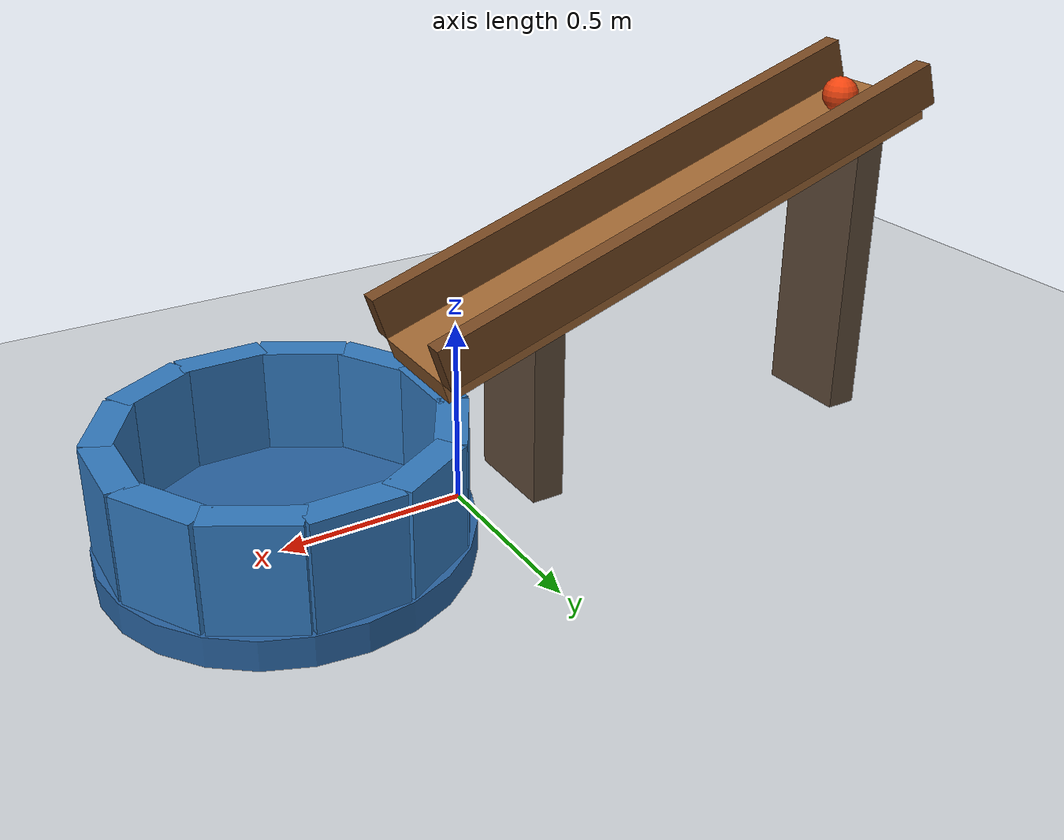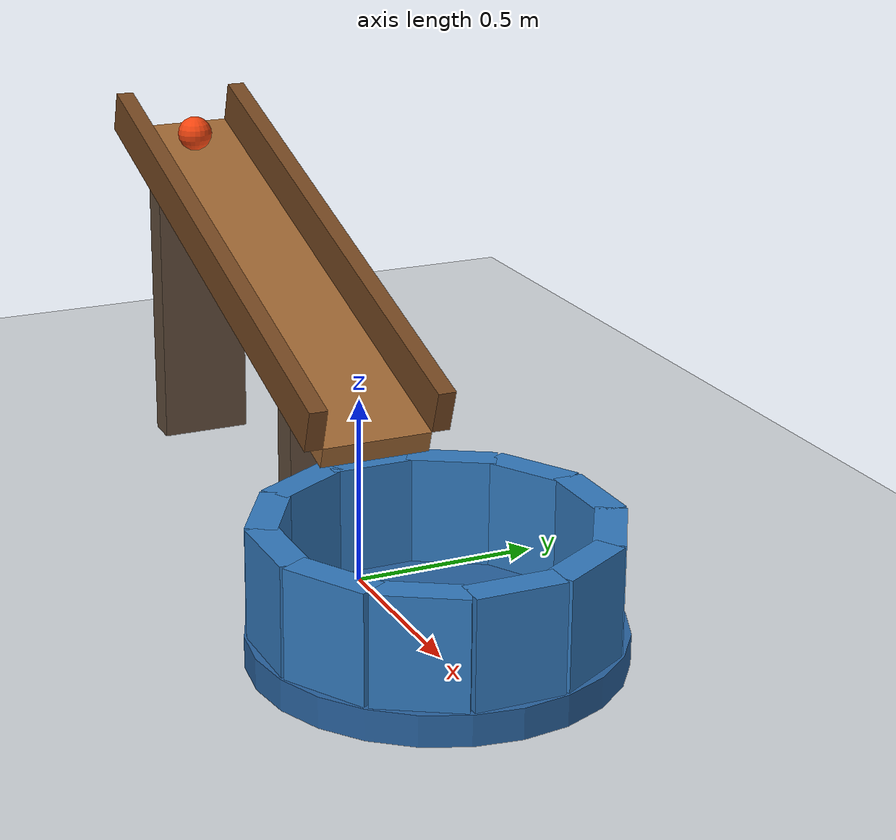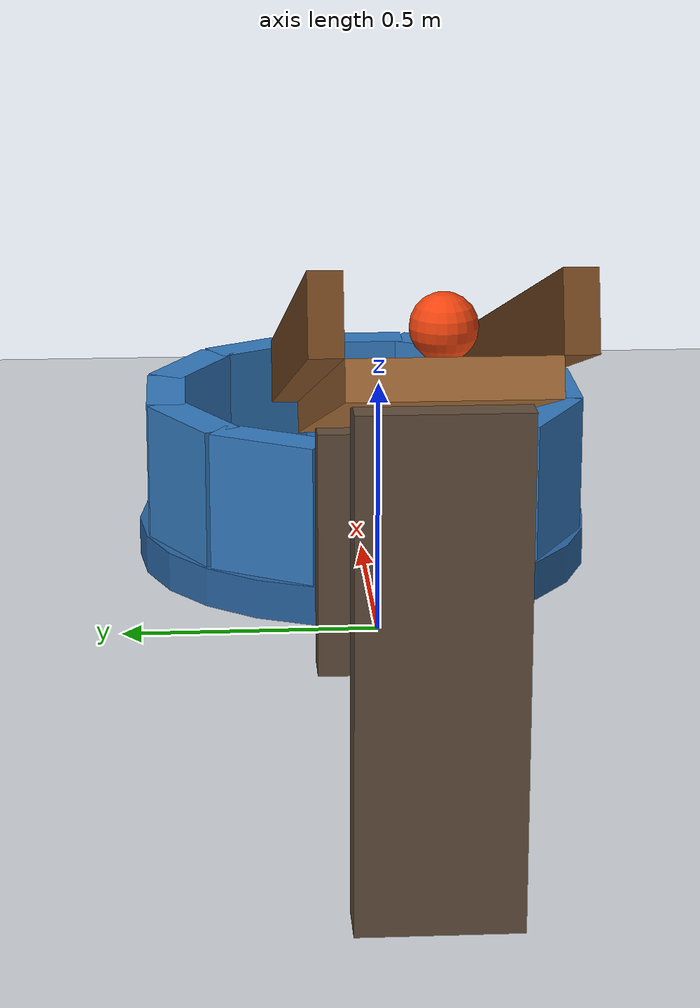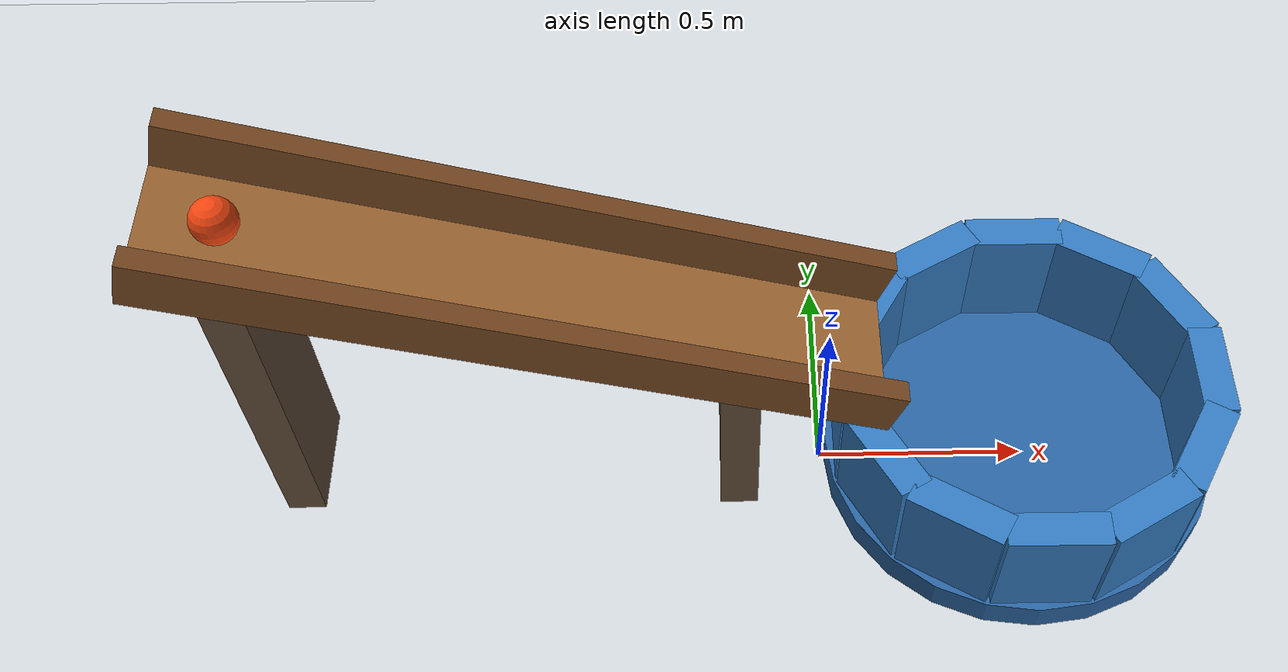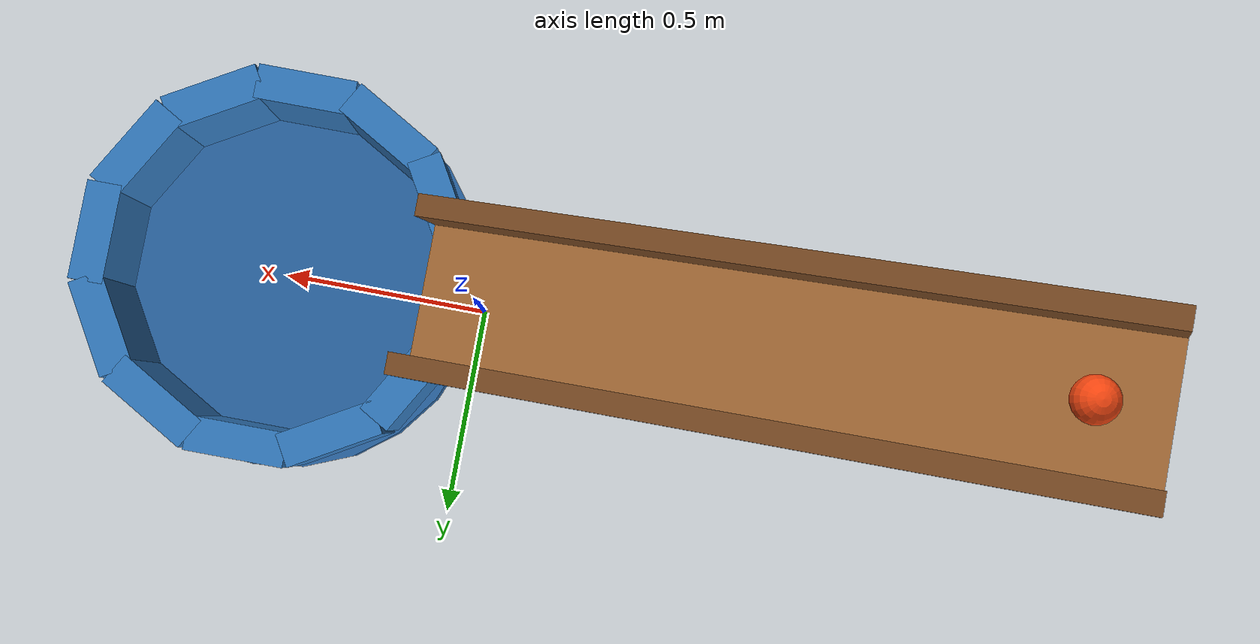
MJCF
<mujoco model="ball_rolls_into_cup">
  <compiler angle="degree"/>
  <option timestep="0.002" gravity="0 0 -9.81" integrator="implicitfast" cone="elliptic" iterations="80"/>
  <statistic center="-0.25 0 0.45" extent="1.8"/>

  <visual>
    <global offwidth="1280" offheight="720"/>
    <headlight ambient="0.35 0.35 0.35" diffuse="0.65 0.65 0.65" specular="0.2 0.2 0.2"/>
  </visual>

  <worldbody>
    <light name="overhead" pos="-0.5 -1.5 3" dir="0 0 -1"/>
    <camera name="overview" pos="-0.25 -3.3 2" xyaxes="1 0 0 0 0.44 0.898"/>

    <geom name="floor" type="plane" pos="0 0 0" size="4 3 0.1" friction="0.8 0.005 0.001" rgba="0.82 0.84 0.86 1"/>

    <!-- The deck slopes downward toward +x and ends above the cup opening. -->
    <body name="ramp" pos="-0.65 0 0.65" euler="0 18 0">
      <geom name="ramp_deck" type="box" pos="0 0 0" size="0.8 0.15 0.03" condim="6" friction="1 0.005 0.0001" solref="0.01 1" rgba="0.62 0.40 0.20 1"/>
      <geom name="ramp_rail_left" type="box" pos="0 0.175 0.09" size="0.8 0.025 0.06" condim="6" friction="1 0.005 0.0001" solref="0.01 1" rgba="0.46 0.28 0.13 1"/>
      <geom name="ramp_rail_right" type="box" pos="0 -0.175 0.09" size="0.8 0.025 0.06" condim="6" friction="1 0.005 0.0001" solref="0.01 1" rgba="0.46 0.28 0.13 1"/>
    </body>

    <geom name="ramp_support_high" type="box" pos="-1.25 0 0.4067" size="0.045 0.13 0.4067" rgba="0.38 0.30 0.23 1"/>
    <geom name="ramp_support_low" type="box" pos="-0.2 0 0.2361" size="0.045 0.13 0.2361" rgba="0.38 0.30 0.23 1"/>

    <!-- A solid bottom and overlapping wall segments form an open cup. -->
    <!-- Higher rolling friction inside the cup dissipates the ball's remaining motion. -->
    <body name="cup" pos="0.48 0 0.04">
      <geom name="cup_bottom" type="cylinder" pos="0 0 0" size="0.47 0.04" priority="1" condim="6" friction="1 0.02 0.01" solref="0.015 1" solimp="0.95 0.99 0.001" rgba="0.16 0.39 0.63 1"/>
      <geom name="cup_wall_00" type="box" pos="0.41 0 0.18" size="0.04 0.115 0.14" euler="0 0 0" priority="1" condim="6" friction="1 0.02 0.01" solref="0.015 1" solimp="0.95 0.99 0.001" rgba="0.20 0.48 0.75 1"/>
      <geom name="cup_wall_01" type="box" pos="0.355070 0.205 0.18" size="0.04 0.115 0.14" euler="0 0 30" priority="1" condim="6" friction="1 0.02 0.01" solref="0.015 1" solimp="0.95 0.99 0.001" rgba="0.20 0.48 0.75 1"/>
      <geom name="cup_wall_02" type="box" pos="0.205 0.355070 0.18" size="0.04 0.115 0.14" euler="0 0 60" priority="1" condim="6" friction="1 0.02 0.01" solref="0.015 1" solimp="0.95 0.99 0.001" rgba="0.20 0.48 0.75 1"/>
      <geom name="cup_wall_03" type="box" pos="0 0.41 0.18" size="0.04 0.115 0.14" euler="0 0 90" priority="1" condim="6" friction="1 0.02 0.01" solref="0.015 1" solimp="0.95 0.99 0.001" rgba="0.20 0.48 0.75 1"/>
      <geom name="cup_wall_04" type="box" pos="-0.205 0.355070 0.18" size="0.04 0.115 0.14" euler="0 0 120" priority="1" condim="6" friction="1 0.02 0.01" solref="0.015 1" solimp="0.95 0.99 0.001" rgba="0.20 0.48 0.75 1"/>
      <geom name="cup_wall_05" type="box" pos="-0.355070 0.205 0.18" size="0.04 0.115 0.14" euler="0 0 150" priority="1" condim="6" friction="1 0.02 0.01" solref="0.015 1" solimp="0.95 0.99 0.001" rgba="0.20 0.48 0.75 1"/>
      <geom name="cup_wall_06" type="box" pos="-0.41 0 0.18" size="0.04 0.115 0.14" euler="0 0 180" priority="1" condim="6" friction="1 0.02 0.01" solref="0.015 1" solimp="0.95 0.99 0.001" rgba="0.20 0.48 0.75 1"/>
      <geom name="cup_wall_07" type="box" pos="-0.355070 -0.205 0.18" size="0.04 0.115 0.14" euler="0 0 210" priority="1" condim="6" friction="1 0.02 0.01" solref="0.015 1" solimp="0.95 0.99 0.001" rgba="0.20 0.48 0.75 1"/>
      <geom name="cup_wall_08" type="box" pos="-0.205 -0.355070 0.18" size="0.04 0.115 0.14" euler="0 0 240" priority="1" condim="6" friction="1 0.02 0.01" solref="0.015 1" solimp="0.95 0.99 0.001" rgba="0.20 0.48 0.75 1"/>
      <geom name="cup_wall_09" type="box" pos="0 -0.41 0.18" size="0.04 0.115 0.14" euler="0 0 270" priority="1" condim="6" friction="1 0.02 0.01" solref="0.015 1" solimp="0.95 0.99 0.001" rgba="0.20 0.48 0.75 1"/>
      <geom name="cup_wall_10" type="box" pos="0.205 -0.355070 0.18" size="0.04 0.115 0.14" euler="0 0 300" priority="1" condim="6" friction="1 0.02 0.01" solref="0.015 1" solimp="0.95 0.99 0.001" rgba="0.20 0.48 0.75 1"/>
      <geom name="cup_wall_11" type="box" pos="0.355070 -0.205 0.18" size="0.04 0.115 0.14" euler="0 0 330" priority="1" condim="6" friction="1 0.02 0.01" solref="0.015 1" solimp="0.95 0.99 0.001" rgba="0.20 0.48 0.75 1"/>
    </body>

    <body name="ball" pos="-1.243156 0 0.927897">
      <freejoint name="ball_free"/>
      <geom name="ball" type="sphere" size="0.05" density="1000" condim="6" friction="1 0.005 0.0001" solref="0.01 1" solimp="0.95 0.99 0.001" rgba="0.95 0.27 0.06 1"/>
    </body>
  </worldbody>

  <keyframe>
    <key name="start" qpos="-1.243156 0 0.927897 1 0 0 0" qvel="0 0 0 0 0 0"/>
  </keyframe>
</mujoco>
